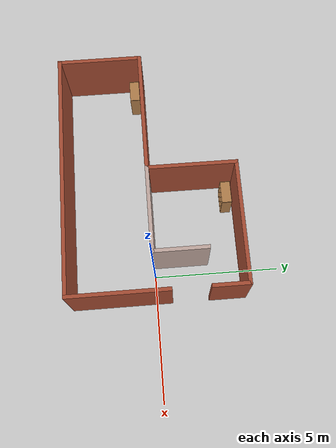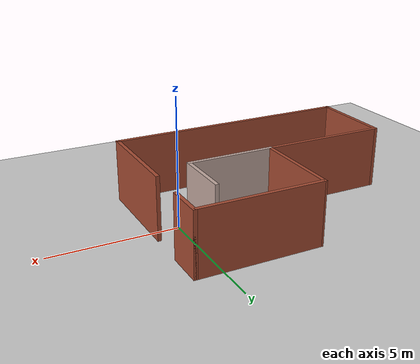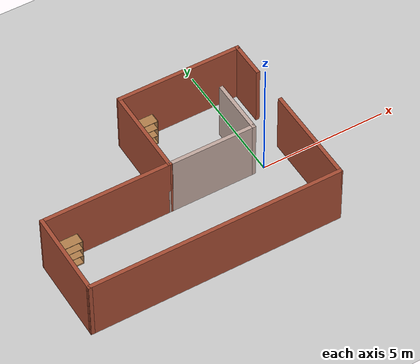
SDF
<sdf version="1.6">
 <world name="default">
  <model name="ground_plane">
   <static>1</static>
   <link name="link">
    <collision name="collision">
     <geometry><plane><normal>0 0 1</normal><size>100 100</size></plane></geometry>
     <surface>
      <contact><collide_bitmask>65535</collide_bitmask></contact>
      <friction><ode><mu>100</mu><mu2>50</mu2></ode></friction>
     </surface>
    </collision>
    <visual name="visual">
     <cast_shadows>0</cast_shadows>
     <geometry><plane><normal>0 0 1</normal><size>100 100</size></plane></geometry>
     <material>
      <script><uri>file://media/materials/scripts/gazebo.material</uri><name>Gazebo/Grey</name></script>
     </material>
    </visual>
   </link>
  </model>
  <model name="mybuilding">
   <pose>-3.90514 0.1099 0 0 -0 0</pose>
   <link name="Wall_17">
    <collision name="Wall_17_Collision">
     <geometry><box><size>5 0.15 2.5</size></box></geometry>
     <pose>0 0 1.25 0 -0 0</pose>
    </collision>
    <visual name="Wall_17_Visual">
     <pose>0 0 1.25 0 -0 0</pose>
     <geometry><box><size>5 0.15 2.5</size></box></geometry>
     <material>
      <script><uri>file://media/materials/scripts/gazebo.material</uri><name>Gazebo/Bricks</name></script>
      <ambient>1 1 1 1</ambient>
     </material>
     <meta><layer>0</layer></meta>
    </visual>
    <pose>2.50014 3.4001 0 0 -0 0</pose>
   </link>
   <link name="Wall_18">
    <collision name="Wall_18_Collision">
     <geometry><box><size>1.5 0.15 2.5</size></box></geometry>
     <pose>0 0 1.25 0 -0 0</pose>
    </collision>
    <visual name="Wall_18_Visual">
     <pose>0 0 1.25 0 -0 0</pose>
     <geometry><box><size>1.5 0.15 2.5</size></box></geometry>
     <material>
      <script><uri>file://media/materials/scripts/gazebo.material</uri><name>Gazebo/Bricks</name></script>
      <ambient>1 1 1 1</ambient>
     </material>
     <meta><layer>0</layer></meta>
    </visual>
    <pose>4.92514 2.7251 0 0 0 -1.5708</pose>
   </link>
   <link name="Wall_20">
    <collision name="Wall_20_Collision">
     <geometry><box><size>3.53042 0.15 2.5</size></box></geometry>
     <pose>0 0 1.25 0 -0 0</pose>
    </collision>
    <visual name="Wall_20_Visual">
     <pose>0 0 1.25 0 -0 0</pose>
     <geometry><box><size>3.53042 0.15 2.5</size></box></geometry>
     <material>
      <script><uri>file://media/materials/scripts/gazebo.material</uri><name>Gazebo/Grey</name></script>
      <ambient>0.760784 0.662745 0.627451 1</ambient>
     </material>
     <meta><layer>0</layer></meta>
    </visual>
    <pose>1.75065 -0.107588 0 0 -0 0</pose>
   </link>
   <link name="Wall_21">
    <collision name="Wall_21_Collision">
     <geometry><box><size>2.25 0.15 2.5</size></box></geometry>
     <pose>0 0 1.25 0 -0 0</pose>
    </collision>
    <visual name="Wall_21_Visual">
     <pose>0 0 1.25 0 -0 0</pose>
     <geometry><box><size>2.25 0.15 2.5</size></box></geometry>
     <material>
      <script><uri>file://media/materials/scripts/gazebo.material</uri><name>Gazebo/Grey</name></script>
      <ambient>0.760784 0.662745 0.627451 1</ambient>
     </material>
     <meta><layer>0</layer></meta>
    </visual>
    <pose>3.44086 0.942412 0 0 -0 1.5708</pose>
   </link>
   <link name="Wall_23">
    <collision name="Wall_23_Collision">
     <geometry><box><size>3.65772 0.15 2.5</size></box></geometry>
     <pose>0 0 1.25 0 -0 0</pose>
    </collision>
    <visual name="Wall_23_Visual">
     <pose>0 0 1.25 0 -0 0</pose>
     <geometry><box><size>3.65772 0.15 2.5</size></box></geometry>
     <material>
      <script><uri>file://media/materials/scripts/gazebo.material</uri><name>Gazebo/Bricks</name></script>
      <ambient>1 1 1 1</ambient>
     </material>
     <meta><layer>0</layer></meta>
    </visual>
    <pose>0.06779 1.64626 0 0 0 -1.57499</pose>
   </link>
   <link name="Wall_25">
    <collision name="Wall_25_Collision">
     <geometry><box><size>3.44282 0.15 2.5</size></box></geometry>
     <pose>0 0 1.25 0 -0 0</pose>
    </collision>
    <visual name="Wall_25_Visual">
     <pose>0 0 1.25 0 -0 0</pose>
     <geometry><box><size>3.44282 0.15 2.5</size></box></geometry>
     <material>
      <script><uri>file://media/materials/scripts/gazebo.material</uri><name>Gazebo/Bricks</name></script>
      <ambient>1 1 1 1</ambient>
     </material>
     <meta><layer>0</layer></meta>
    </visual>
    <pose>-4.91884 -1.75374 0 0 -0 1.56714</pose>
   </link>
   <link name="Wall_26">
    <collision name="Wall_26_Collision">
     <geometry><box><size>5.13847 0.15 2.5</size></box></geometry>
     <pose>0 0 1.25 0 -0 0</pose>
    </collision>
    <visual name="Wall_26_Visual">
     <pose>0 0 1.25 0 -0 0</pose>
     <geometry><box><size>5.13847 0.15 2.5</size></box></geometry>
     <material>
      <script><uri>file://media/materials/scripts/gazebo.material</uri><name>Gazebo/Bricks</name></script>
      <ambient>1 1 1 1</ambient>
     </material>
     <meta><layer>0</layer></meta>
    </visual>
    <pose>-2.41858 -0.107588 0 0 -0 0</pose>
   </link>
   <link name="Wall_5">
    <collision name="Wall_5_Collision">
     <geometry><box><size>10 0.15 2.5</size></box></geometry>
     <pose>0 0 1.25 0 -0 0</pose>
    </collision>
    <visual name="Wall_5_Visual">
     <pose>0 0 1.25 0 -0 0</pose>
     <geometry><box><size>10 0.15 2.5</size></box></geometry>
     <material>
      <script><uri>file://media/materials/scripts/gazebo.material</uri><name>Gazebo/Bricks</name></script>
      <ambient>1 1 1 1</ambient>
     </material>
     <meta><layer>0</layer></meta>
    </visual>
    <pose>0.000138 -3.3999 0 0 -0 0</pose>
   </link>
   <link name="Wall_6">
    <collision name="Wall_6_Collision">
     <geometry><box><size>4 0.15 2.5</size></box></geometry>
     <pose>0 0 1.25 0 -0 0</pose>
    </collision>
    <visual name="Wall_6_Visual">
     <pose>0 0 1.25 0 -0 0</pose>
     <geometry><box><size>4 0.15 2.5</size></box></geometry>
     <material>
      <script><uri>file://media/materials/scripts/gazebo.material</uri><name>Gazebo/Bricks</name></script>
      <ambient>1 1 1 1</ambient>
     </material>
     <meta><layer>0</layer></meta>
    </visual>
    <pose>4.92514 -1.4749 0 0 -0 1.5708</pose>
   </link>
   <static>1</static>
  </model>
  <model name="bookshelf">
   <static>1</static>
   <link name="link">
    <inertial><mass>1</mass></inertial>
    <collision name="back">
     <pose>0 0.005 0.6 0 -0 0</pose>
     <geometry><box><size>0.9 0.01 1.2</size></box></geometry>
    </collision>
    <visual name="visual1">
     <pose>0 0.005 0.6 0 -0 0</pose>
     <geometry><box><size>0.9 0.01 1.2</size></box></geometry>
     <material>
      <script><uri>file://media/materials/scripts/gazebo.material</uri><name>Gazebo/Wood</name></script>
     </material>
    </visual>
    <collision name="left_side">
     <pose>0.45 -0.195 0.6 0 -0 0</pose>
     <geometry><box><size>0.02 0.4 1.2</size></box></geometry>
    </collision>
    <visual name="visual2">
     <pose>0.45 -0.195 0.6 0 -0 0</pose>
     <geometry><box><size>0.02 0.4 1.2</size></box></geometry>
     <material>
      <script><uri>file://media/materials/scripts/gazebo.material</uri><name>Gazebo/Wood</name></script>
     </material>
    </visual>
    <collision name="right_side">
     <pose>-0.45 -0.195 0.6 0 -0 0</pose>
     <geometry><box><size>0.02 0.4 1.2</size></box></geometry>
    </collision>
    <visual name="visual3">
     <pose>-0.45 -0.195 0.6 0 -0 0</pose>
     <geometry><box><size>0.02 0.4 1.2</size></box></geometry>
     <material>
      <script><uri>file://media/materials/scripts/gazebo.material</uri><name>Gazebo/Wood</name></script>
     </material>
    </visual>
    <collision name="bottom">
     <pose>0 -0.195 0.03 0 -0 0</pose>
     <geometry><box><size>0.88 0.4 0.06</size></box></geometry>
    </collision>
    <visual name="visual4">
     <pose>0 -0.195 0.03 0 -0 0</pose>
     <geometry><box><size>0.88 0.4 0.06</size></box></geometry>
     <material>
      <script><uri>file://media/materials/scripts/gazebo.material</uri><name>Gazebo/Wood</name></script>
     </material>
    </visual>
    <collision name="top">
     <pose>0 -0.195 1.19 0 -0 0</pose>
     <geometry><box><size>0.88 0.4 0.02</size></box></geometry>
    </collision>
    <visual name="visual5">
     <pose>0 -0.195 1.19 0 -0 0</pose>
     <geometry><box><size>0.88 0.4 0.02</size></box></geometry>
     <material>
      <script><uri>file://media/materials/scripts/gazebo.material</uri><name>Gazebo/Wood</name></script>
     </material>
    </visual>
    <collision name="low_shelf">
     <pose>0 -0.195 0.43 0 -0 0</pose>
     <geometry><box><size>0.88 0.4 0.02</size></box></geometry>
    </collision>
    <visual name="visual6">
     <pose>0 -0.195 0.43 0 -0 0</pose>
     <geometry><box><size>0.88 0.4 0.02</size></box></geometry>
     <material>
      <script><uri>file://media/materials/scripts/gazebo.material</uri><name>Gazebo/Wood</name></script>
     </material>
    </visual>
    <collision name="high_shelf">
     <pose>0 -0.195 0.8 0 -0 0</pose>
     <geometry><box><size>0.88 0.4 0.02</size></box></geometry>
    </collision>
    <visual name="visual7">
     <pose>0 -0.195 0.8 0 -0 0</pose>
     <geometry><box><size>0.88 0.4 0.02</size></box></geometry>
     <material>
      <script><uri>file://media/materials/scripts/gazebo.material</uri><name>Gazebo/Wood</name></script>
     </material>
    </visual>
   </link>
   <pose>-3.08655 3.31796 0 0 -0 0</pose>
  </model>
  <model name="bookshelf_0">
   <static>1</static>
   <link name="link">
    <inertial><mass>1</mass></inertial>
    <collision name="back">
     <pose>0 0.005 0.6 0 -0 0</pose>
     <geometry><box><size>0.9 0.01 1.2</size></box></geometry>
    </collision>
    <visual name="visual1">
     <pose>0 0.005 0.6 0 -0 0</pose>
     <geometry><box><size>0.9 0.01 1.2</size></box></geometry>
     <material>
      <script><uri>file://media/materials/scripts/gazebo.material</uri><name>Gazebo/Wood</name></script>
     </material>
    </visual>
    <collision name="left_side">
     <pose>0.45 -0.195 0.6 0 -0 0</pose>
     <geometry><box><size>0.02 0.4 1.2</size></box></geometry>
    </collision>
    <visual name="visual2">
     <pose>0.45 -0.195 0.6 0 -0 0</pose>
     <geometry><box><size>0.02 0.4 1.2</size></box></geometry>
     <material>
      <script><uri>file://media/materials/scripts/gazebo.material</uri><name>Gazebo/Wood</name></script>
     </material>
    </visual>
    <collision name="right_side">
     <pose>-0.45 -0.195 0.6 0 -0 0</pose>
     <geometry><box><size>0.02 0.4 1.2</size></box></geometry>
    </collision>
    <visual name="visual3">
     <pose>-0.45 -0.195 0.6 0 -0 0</pose>
     <geometry><box><size>0.02 0.4 1.2</size></box></geometry>
     <material>
      <script><uri>file://media/materials/scripts/gazebo.material</uri><name>Gazebo/Wood</name></script>
     </material>
    </visual>
    <collision name="bottom">
     <pose>0 -0.195 0.03 0 -0 0</pose>
     <geometry><box><size>0.88 0.4 0.06</size></box></geometry>
    </collision>
    <visual name="visual4">
     <pose>0 -0.195 0.03 0 -0 0</pose>
     <geometry><box><size>0.88 0.4 0.06</size></box></geometry>
     <material>
      <script><uri>file://media/materials/scripts/gazebo.material</uri><name>Gazebo/Wood</name></script>
     </material>
    </visual>
    <collision name="top">
     <pose>0 -0.195 1.19 0 -0 0</pose>
     <geometry><box><size>0.88 0.4 0.02</size></box></geometry>
    </collision>
    <visual name="visual5">
     <pose>0 -0.195 1.19 0 -0 0</pose>
     <geometry><box><size>0.88 0.4 0.02</size></box></geometry>
     <material>
      <script><uri>file://media/materials/scripts/gazebo.material</uri><name>Gazebo/Wood</name></script>
     </material>
    </visual>
    <collision name="low_shelf">
     <pose>0 -0.195 0.43 0 -0 0</pose>
     <geometry><box><size>0.88 0.4 0.02</size></box></geometry>
    </collision>
    <visual name="visual6">
     <pose>0 -0.195 0.43 0 -0 0</pose>
     <geometry><box><size>0.88 0.4 0.02</size></box></geometry>
     <material>
      <script><uri>file://media/materials/scripts/gazebo.material</uri><name>Gazebo/Wood</name></script>
     </material>
    </visual>
    <collision name="high_shelf">
     <pose>0 -0.195 0.8 0 -0 0</pose>
     <geometry><box><size>0.88 0.4 0.02</size></box></geometry>
    </collision>
    <visual name="visual7">
     <pose>0 -0.195 0.8 0 -0 0</pose>
     <geometry><box><size>0.88 0.4 0.02</size></box></geometry>
     <material>
      <script><uri>file://media/materials/scripts/gazebo.material</uri><name>Gazebo/Wood</name></script>
     </material>
    </visual>
   </link>
   <pose>-8.05287 -0.128584 0 0 -0 0</pose>
  </model>
 </world>
</sdf>
